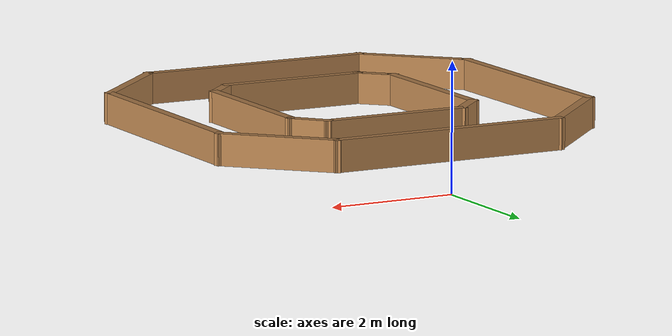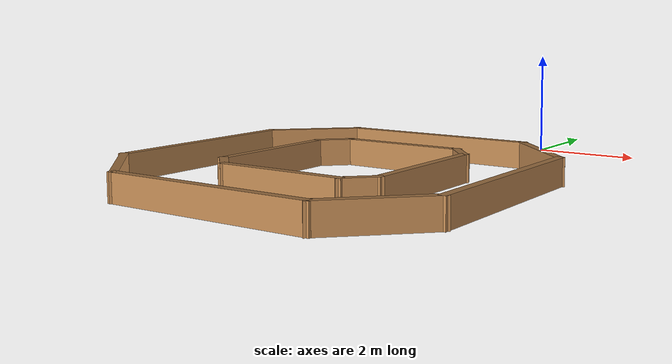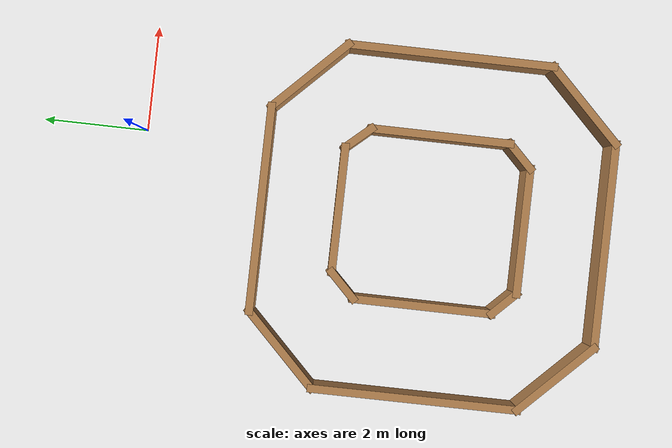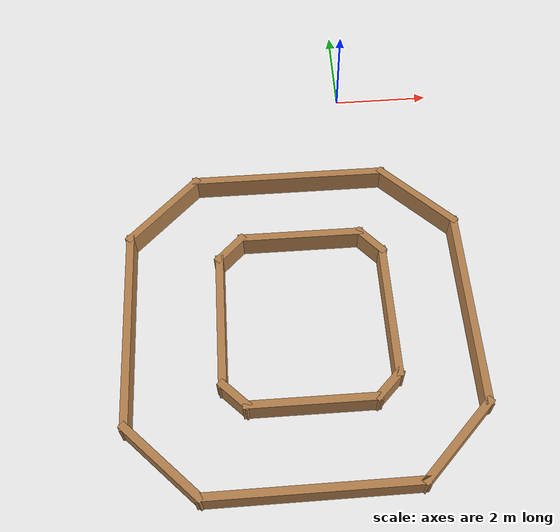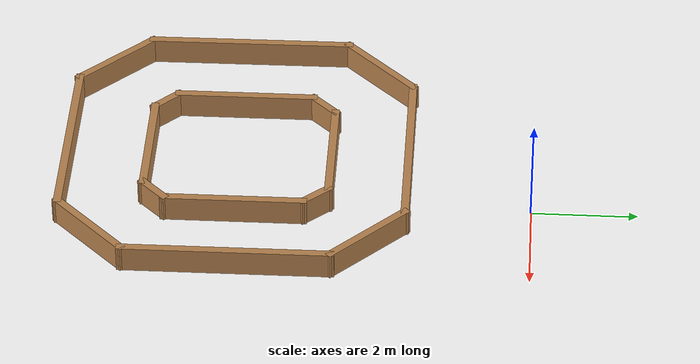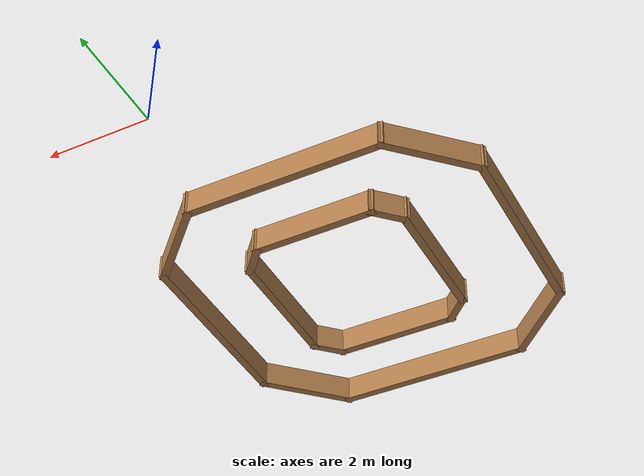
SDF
<?xml version='1.0'?>
<sdf version='1.6'>
  <model name='test2'>
    <pose frame=''>-1.249 -5.5815 0 0 -0 0</pose>
    <link name='Wall_1'>
      <collision name='Wall_1_Collision'>
        <geometry>
          <box>
            <size>4 0.15 0.5</size>
          </box>
        </geometry>
        <pose frame=''>0 0 0.25 0 -0 0</pose>
      </collision>
      <visual name='Wall_1_Visual'>
        <pose frame=''>0 0 0.25 0 -0 0</pose>
        <geometry>
          <box>
            <size>4 0.15 0.5</size>
          </box>
        </geometry>
        <material>
          <script>
            <uri>file://media/materials/scripts/gazebo.material</uri>
            <name>Gazebo/Wood</name>
          </script>
          <ambient>1 1 1 1</ambient>
        </material>
      </visual>
      <pose frame=''>0 3.2405 0 0 -0 0</pose>
    </link>
    <link name='Wall_10'>
      <collision name='Wall_10_Collision'>
        <geometry>
          <box>
            <size>2 0.15 0.5</size>
          </box>
        </geometry>
        <pose frame=''>0 0 0.25 0 -0 0</pose>
      </collision>
      <visual name='Wall_10_Visual'>
        <pose frame=''>0 0 0.25 0 -0 0</pose>
        <geometry>
          <box>
            <size>2 0.15 0.5</size>
          </box>
        </geometry>
        <material>
          <script>
            <uri>file://media/materials/scripts/gazebo.material</uri>
            <name>Gazebo/Wood</name>
          </script>
          <ambient>1 1 1 1</ambient>
        </material>
      </visual>
      <pose frame=''>-2.564 -2.5865 0 0 -0 2.35619</pose>
    </link>
    <link name='Wall_11'>
      <collision name='Wall_11_Collision'>
        <geometry>
          <box>
            <size>4.01503 0.15 0.5</size>
          </box>
        </geometry>
        <pose frame=''>0 0 0.25 0 -0 0</pose>
      </collision>
      <visual name='Wall_11_Visual'>
        <pose frame=''>0 0 0.25 0 -0 0</pose>
        <geometry>
          <box>
            <size>4.01503 0.15 0.5</size>
          </box>
        </geometry>
        <material>
          <script>
            <uri>file://media/materials/scripts/gazebo.material</uri>
            <name>Gazebo/Wood</name>
          </script>
          <ambient>1 1 1 1</ambient>
        </material>
      </visual>
      <pose frame=''>-3.2255 0 0 0 -0 1.57468</pose>
    </link>
    <link name='Wall_12'>
      <collision name='Wall_12_Collision'>
        <geometry>
          <box>
            <size>2 0.15 0.5</size>
          </box>
        </geometry>
        <pose frame=''>0 0 0.25 0 -0 0</pose>
      </collision>
      <visual name='Wall_12_Visual'>
        <pose frame=''>0 0 0.25 0 -0 0</pose>
        <geometry>
          <box>
            <size>2 0.15 0.5</size>
          </box>
        </geometry>
        <material>
          <script>
            <uri>file://media/materials/scripts/gazebo.material</uri>
            <name>Gazebo/Wood</name>
          </script>
          <ambient>1 1 1 1</ambient>
        </material>
      </visual>
      <pose frame=''>-2.579 2.5865 0 0 -0 0.785398</pose>
    </link>
    <link name='Wall_20'>
      <collision name='Wall_20_Collision'>
        <geometry>
          <box>
            <size>0.787195 0.15 0.5</size>
          </box>
        </geometry>
        <pose frame=''>0 0 0.25 0 -0 0</pose>
      </collision>
      <visual name='Wall_20_Visual'>
        <pose frame=''>0 0 0.25 0 -0 0</pose>
        <geometry>
          <box>
            <size>0.787195 0.15 0.5</size>
          </box>
        </geometry>
        <material>
          <script>
            <uri>file://media/materials/scripts/gazebo.material</uri>
            <name>Gazebo/Wood</name>
          </script>
          <ambient>1 1 1 1</ambient>
        </material>
      </visual>
      <pose frame=''>-1.258 1.561 0 0 -0 0.786508</pose>
    </link>
    <link name='Wall_21'>
      <collision name='Wall_21_Collision'>
        <geometry>
          <box>
            <size>2.5 0.15 0.5</size>
          </box>
        </geometry>
        <pose frame=''>0 0 0.25 0 -0 0</pose>
      </collision>
      <visual name='Wall_21_Visual'>
        <pose frame=''>0 0 0.25 0 -0 0</pose>
        <geometry>
          <box>
            <size>2.5 0.15 0.5</size>
          </box>
        </geometry>
        <material>
          <script>
            <uri>file://media/materials/scripts/gazebo.material</uri>
            <name>Gazebo/Wood</name>
          </script>
          <ambient>1 1 1 1</ambient>
        </material>
      </visual>
      <pose frame=''>0.142 1.7865 0 0 -0 0</pose>
    </link>
    <link name='Wall_22'>
      <collision name='Wall_22_Collision'>
        <geometry>
          <box>
            <size>0.751152 0.15 0.5</size>
          </box>
        </geometry>
        <pose frame=''>0 0 0.25 0 -0 0</pose>
      </collision>
      <visual name='Wall_22_Visual'>
        <pose frame=''>0 0 0.25 0 -0 0</pose>
        <geometry>
          <box>
            <size>0.751152 0.15 0.5</size>
          </box>
        </geometry>
        <material>
          <script>
            <uri>file://media/materials/scripts/gazebo.material</uri>
            <name>Gazebo/Wood</name>
          </script>
          <ambient>1 1 1 1</ambient>
        </material>
      </visual>
      <pose frame=''>1.516 1.561 0 0 0 -0.847744</pose>
    </link>
    <link name='Wall_23'>
      <collision name='Wall_23_Collision'>
        <geometry>
          <box>
            <size>2.75 0.15 0.5</size>
          </box>
        </geometry>
        <pose frame=''>0 0 0.25 0 -0 0</pose>
      </collision>
      <visual name='Wall_23_Visual'>
        <pose frame=''>0 0 0.25 0 -0 0</pose>
        <geometry>
          <box>
            <size>2.75 0.15 0.5</size>
          </box>
        </geometry>
        <material>
          <script>
            <uri>file://media/materials/scripts/gazebo.material</uri>
            <name>Gazebo/Wood</name>
          </script>
          <ambient>1 1 1 1</ambient>
        </material>
      </visual>
      <pose frame=''>1.715 0.0355 0 0 0 -1.5708</pose>
    </link>
    <link name='Wall_24'>
      <collision name='Wall_24_Collision'>
        <geometry>
          <box>
            <size>0.75 0.15 0.5</size>
          </box>
        </geometry>
        <pose frame=''>0 0 0.25 0 -0 0</pose>
      </collision>
      <visual name='Wall_24_Visual'>
        <pose frame=''>0 0 0.25 0 -0 0</pose>
        <geometry>
          <box>
            <size>0.75 0.15 0.5</size>
          </box>
        </geometry>
        <material>
          <script>
            <uri>file://media/materials/scripts/gazebo.material</uri>
            <name>Gazebo/Wood</name>
          </script>
          <ambient>1 1 1 1</ambient>
        </material>
      </visual>
      <pose frame=''>1.503 -1.4765 0 0 0 -2.35619</pose>
    </link>
    <link name='Wall_33'>
      <collision name='Wall_33_Collision'>
        <geometry>
          <box>
            <size>2.5 0.15 0.5</size>
          </box>
        </geometry>
        <pose frame=''>0 0 0.25 0 -0 0</pose>
      </collision>
      <visual name='Wall_33_Visual'>
        <pose frame=''>0 0 0.25 0 -0 0</pose>
        <geometry>
          <box>
            <size>2.5 0.15 0.5</size>
          </box>
        </geometry>
        <material>
          <script>
            <uri>file://media/materials/scripts/gazebo.material</uri>
            <name>Gazebo/Wood</name>
          </script>
          <ambient>1 1 1 1</ambient>
        </material>
      </visual>
      <pose frame=''>0.116 -1.6885 0 0 -0 3.14159</pose>
    </link>
    <link name='Wall_34'>
      <collision name='Wall_34_Collision'>
        <geometry>
          <box>
            <size>0.749627 0.15 0.5</size>
          </box>
        </geometry>
        <pose frame=''>0 0 0.25 0 -0 0</pose>
      </collision>
      <visual name='Wall_34_Visual'>
        <pose frame=''>0 0 0.25 0 -0 0</pose>
        <geometry>
          <box>
            <size>0.749627 0.15 0.5</size>
          </box>
        </geometry>
        <material>
          <script>
            <uri>file://media/materials/scripts/gazebo.material</uri>
            <name>Gazebo/Wood</name>
          </script>
          <ambient>1 1 1 1</ambient>
        </material>
      </visual>
      <pose frame=''>-1.271 -1.4765 0 0 -0 2.35619</pose>
    </link>
    <link name='Wall_35'>
      <collision name='Wall_35_Collision'>
        <geometry>
          <box>
            <size>2.75 0.15 0.5</size>
          </box>
        </geometry>
        <pose frame=''>0 0 0.25 0 -0 0</pose>
      </collision>
      <visual name='Wall_35_Visual'>
        <pose frame=''>0 0 0.25 0 -0 0</pose>
        <geometry>
          <box>
            <size>2.75 0.15 0.5</size>
          </box>
        </geometry>
        <material>
          <script>
            <uri>file://media/materials/scripts/gazebo.material</uri>
            <name>Gazebo/Wood</name>
          </script>
          <ambient>1 1 1 1</ambient>
        </material>
      </visual>
      <pose frame=''>-1.483 0.0355 0 0 -0 1.5708</pose>
    </link>
    <link name='Wall_4'>
      <collision name='Wall_4_Collision'>
        <geometry>
          <box>
            <size>2 0.15 0.5</size>
          </box>
        </geometry>
        <pose frame=''>0 0 0.25 0 -0 0</pose>
      </collision>
      <visual name='Wall_4_Visual'>
        <pose frame=''>0 0 0.25 0 -0 0</pose>
        <geometry>
          <box>
            <size>2 0.15 0.5</size>
          </box>
        </geometry>
        <material>
          <script>
            <uri>file://media/materials/scripts/gazebo.material</uri>
            <name>Gazebo/Wood</name>
          </script>
          <ambient>1 1 1 1</ambient>
        </material>
      </visual>
      <pose frame=''>2.579 2.5865 0 0 0 -0.785398</pose>
    </link>
    <link name='Wall_5'>
      <collision name='Wall_5_Collision'>
        <geometry>
          <box>
            <size>4 0.15 0.5</size>
          </box>
        </geometry>
        <pose frame=''>0 0 0.25 0 -0 0</pose>
      </collision>
      <visual name='Wall_5_Visual'>
        <pose frame=''>0 0 0.25 0 -0 0</pose>
        <geometry>
          <box>
            <size>4 0.15 0.5</size>
          </box>
        </geometry>
        <material>
          <script>
            <uri>file://media/materials/scripts/gazebo.material</uri>
            <name>Gazebo/Wood</name>
          </script>
          <ambient>1 1 1 1</ambient>
        </material>
      </visual>
      <pose frame=''>3.233 0.0075 0 0 0 -1.5708</pose>
    </link>
    <link name='Wall_8'>
      <collision name='Wall_8_Collision'>
        <geometry>
          <box>
            <size>2 0.15 0.5</size>
          </box>
        </geometry>
        <pose frame=''>0 0 0.25 0 -0 0</pose>
      </collision>
      <visual name='Wall_8_Visual'>
        <pose frame=''>0 0 0.25 0 -0 0</pose>
        <geometry>
          <box>
            <size>2 0.15 0.5</size>
          </box>
        </geometry>
        <material>
          <script>
            <uri>file://media/materials/scripts/gazebo.material</uri>
            <name>Gazebo/Wood</name>
          </script>
          <ambient>1 1 1 1</ambient>
        </material>
      </visual>
      <pose frame=''>2.579 -2.5715 0 0 0 -2.35619</pose>
    </link>
    <link name='Wall_9'>
      <collision name='Wall_9_Collision'>
        <geometry>
          <box>
            <size>3.98503 0.15 0.5</size>
          </box>
        </geometry>
        <pose frame=''>0 0 0.25 0 -0 0</pose>
      </collision>
      <visual name='Wall_9_Visual'>
        <pose frame=''>0 0 0.25 0 -0 0</pose>
        <geometry>
          <box>
            <size>3.98503 0.15 0.5</size>
          </box>
        </geometry>
        <material>
          <script>
            <uri>file://media/materials/scripts/gazebo.material</uri>
            <name>Gazebo/Wood</name>
          </script>
          <ambient>1 1 1 1</ambient>
        </material>
      </visual>
      <pose frame=''>0.0075 -3.233 0 0 0 -3.13768</pose>
    </link>
    <static>1</static>
  </model>
</sdf>
